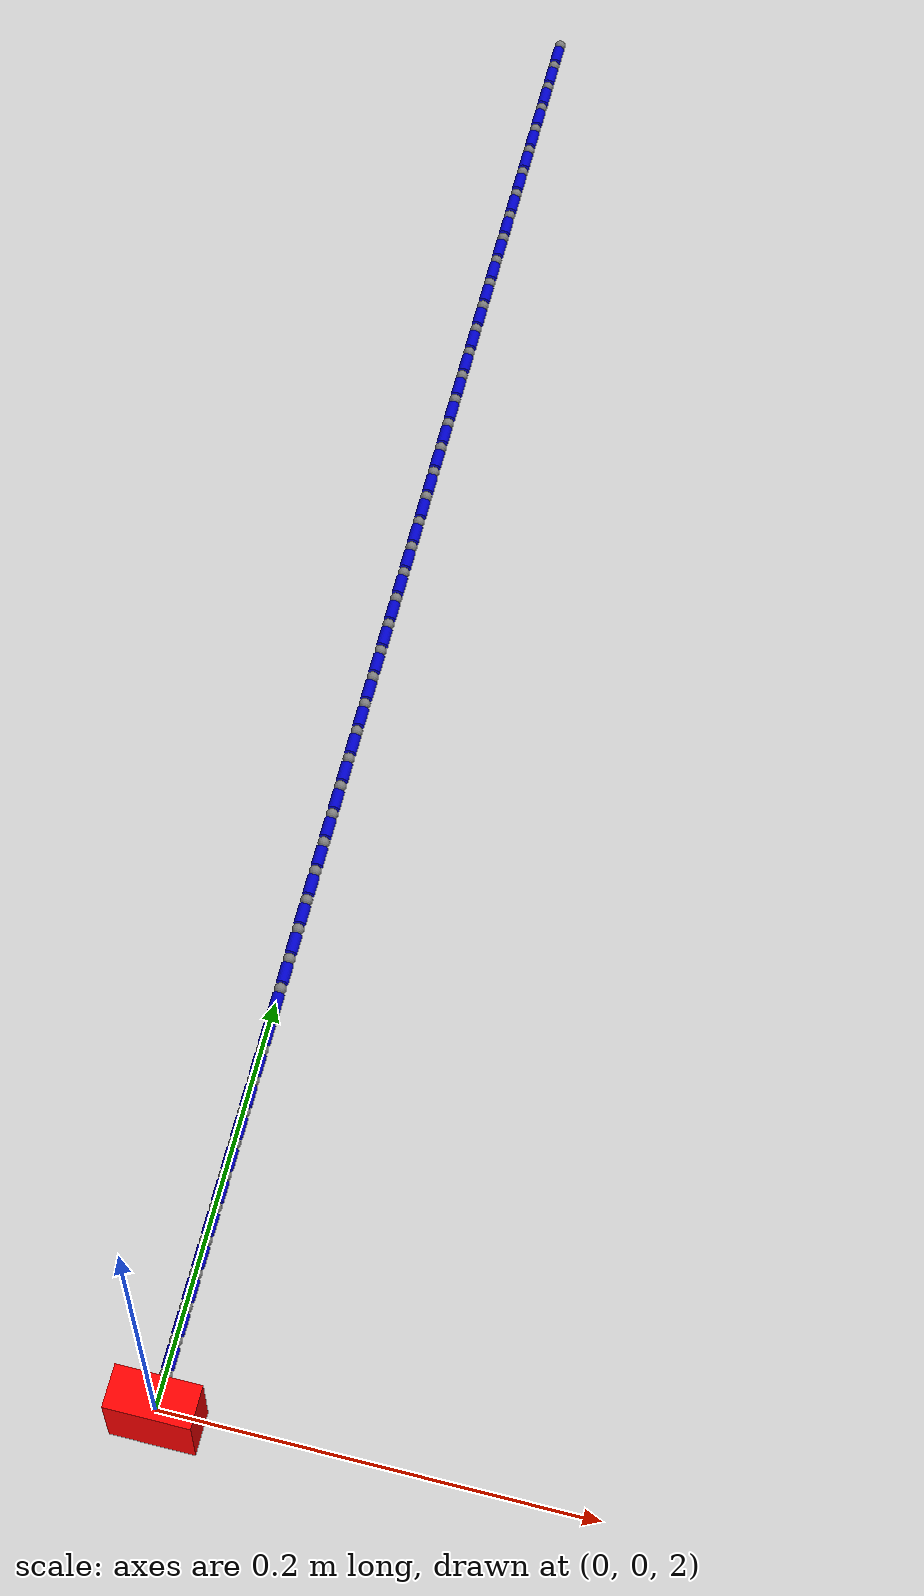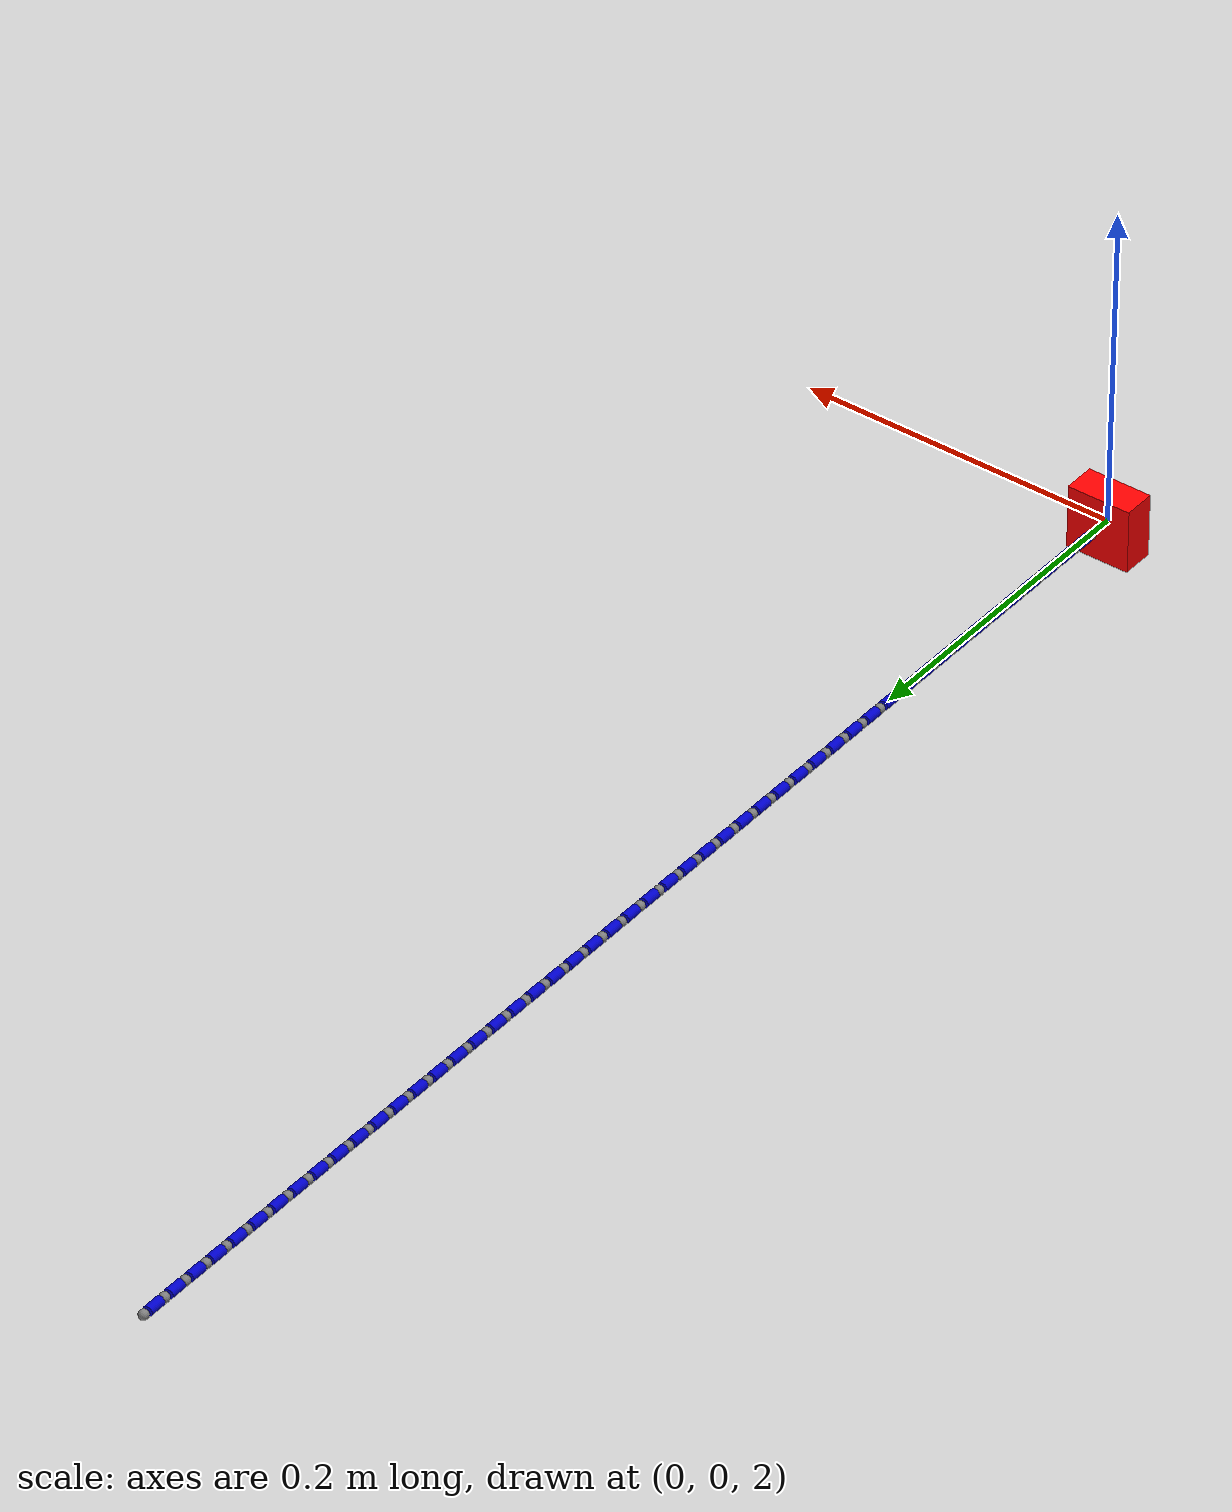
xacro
<?xml version="1.0"?>
<robot name="flexible_cable" xmlns:xacro="http://www.ros.org/wiki/xacro">
  <xacro:property name="blue_color" value="0 0 0.8 1" />
  <xacro:property name="red_color" value="1 0 0 1" />
  <xacro:property name="gray_color" value="0.5 0.5 0.5 1" />
  <xacro:property name="sphere_radius" value="0.003" />
  <xacro:property name="cylinder_radius" value="0.003" />
  <xacro:property name="cylinder_length" value="0.01" />
  <xacro:property name="cable_height" value="2" />
  <xacro:property name="damping" value="0.1" />
  <xacro:property name="friction" value="0.0" />

  <material name="blue">
    <color rgba="${blue_color}"/>
  </material>

  <material name="gray">
    <color rgba="${gray_color}"/>
  </material>

  <!-- World link (invisible) -->
  <link name="world"/>

  <link name="base_link">
    <visual>
      <geometry>
        <box size="${4 * cylinder_length} ${4 * cylinder_length} ${2 * cylinder_length}"/>
      </geometry>
      <material name="red">
        <color rgba="${red_color}"/>
      </material>
    </visual>
    <collision>
      <geometry>
        <box size="${4 * cylinder_length} ${4 * cylinder_length} ${2 * cylinder_length}"/>
      </geometry>
    </collision>
    <inertial>
      <mass value="0.1"/>
      <inertia ixx="0.01" ixy="0" ixz="0" iyy="0.01" iyz="0" izz="0.01"/>
    </inertial>
  </link>

  <gazebo reference="base_link">
    <material>Gazebo/Gray</material>
    <selfCollide>true</selfCollide>
  </gazebo>

  <!-- Fixed joint to connect base_link to world -->
  <joint name="fixed_to_world" type="fixed">
    <parent link="world"/>
    <child link="base_link"/>
    <origin xyz="0 0 ${cable_height}" rpy="1.57 0 0"/>
  </joint>

  <!-- Cable segment macro -->
  <xacro:macro name="cable_segment" params="name parent">
    <!-- Spherical joint -->
    <link name="${name}_sphere">
      <visual>
        <geometry>
          <sphere radius="${sphere_radius}"/>
        </geometry>
        <material name="gray"/>
      </visual>
      <collision>
        <geometry>
          <sphere radius="${sphere_radius}"/>
        </geometry>
      </collision>
      <inertial>
        <mass value="0.005"/>
        <inertia ixx="0.0001" ixy="0" ixz="0" iyy="0.0001" iyz="0" izz="0.0001"/>
      </inertial>
    </link>

  <joint name="${parent}_to_${name}_sphere" type="revolute">
    <parent link="${parent}"/>
    <child link="${name}_sphere"/>
    <origin xyz="0 0 ${-cylinder_length - 2 * sphere_radius}" rpy="0 0 0"/>
    <axis xyz="0 1 0"/>
    <limit lower="-3.14" upper="3.14" effort="10" velocity="3"/>
    <dynamics damping="${damping}" friction="${friction}"/>
  </joint>

    <!-- Cylinder segment -->
  <link name="${name}_cylinder">
    <visual>
      <geometry>
        <cylinder length="${cylinder_length}" radius="${cylinder_radius}"/>
      </geometry>
      <origin xyz="0 0 ${-cylinder_length/2- sphere_radius}" rpy="0 0 0"/>
      <material name="blue"/>
    </visual>
    <collision>
      <geometry>
        <cylinder length="${cylinder_length}" radius="${cylinder_radius}"/>
      </geometry>
      <origin xyz="0 0 ${-cylinder_length/2- sphere_radius}" rpy="0 0 0"/>
    </collision>
    <inertial>
      <mass value="0.01"/>
      <inertia ixx="0.001" ixy="0" ixz="0" iyy="0.001" iyz="0" izz="0.001"/>
      <origin xyz="0 0 ${-cylinder_length/2- sphere_radius}" rpy="0 0 0"/>
    </inertial>
  </link>

  <joint name="${name}_sphere_to_cylinder" type="revolute">
    <parent link="${name}_sphere"/>
    <child link="${name}_cylinder"/>
    <origin xyz="0 0 0" rpy="0 0 0"/>
    <axis xyz="1 0 0"/>
    <limit lower="-3.14" upper="3.14" effort="10" velocity="3"/>
    <dynamics damping="${damping}" friction="${friction}"/>
  </joint>

    <!-- Enable self-collision for this segment -->
  <gazebo reference="${name}_sphere">
    <material>Gazebo/Gray</material>
    <selfCollide>true</selfCollide>
  </gazebo>

  <gazebo reference="${name}_cylinder">
    <material>Gazebo/Blue</material>
    <selfCollide>true</selfCollide>
  </gazebo>
  </xacro:macro>

  <!-- Create 50 segments -->
  <xacro:cable_segment name="segment_1" parent="base_link"/>
  <xacro:cable_segment name="segment_2" parent="segment_1_cylinder"/>
  <xacro:cable_segment name="segment_3" parent="segment_2_cylinder"/>
  <xacro:cable_segment name="segment_4" parent="segment_3_cylinder"/>
  <xacro:cable_segment name="segment_5" parent="segment_4_cylinder"/>
  <xacro:cable_segment name="segment_6" parent="segment_5_cylinder"/>
  <xacro:cable_segment name="segment_7" parent="segment_6_cylinder"/>
  <xacro:cable_segment name="segment_8" parent="segment_7_cylinder"/>
  <xacro:cable_segment name="segment_9" parent="segment_8_cylinder"/>
  <xacro:cable_segment name="segment_10" parent="segment_9_cylinder"/>
  <xacro:cable_segment name="segment_11" parent="segment_10_cylinder"/>
  <xacro:cable_segment name="segment_12" parent="segment_11_cylinder"/>
  <xacro:cable_segment name="segment_13" parent="segment_12_cylinder"/>
  <xacro:cable_segment name="segment_14" parent="segment_13_cylinder"/>
  <xacro:cable_segment name="segment_15" parent="segment_14_cylinder"/>
  <xacro:cable_segment name="segment_16" parent="segment_15_cylinder"/>
  <xacro:cable_segment name="segment_17" parent="segment_16_cylinder"/>
  <xacro:cable_segment name="segment_18" parent="segment_17_cylinder"/>
  <xacro:cable_segment name="segment_19" parent="segment_18_cylinder"/>
  <xacro:cable_segment name="segment_20" parent="segment_19_cylinder"/>
  <xacro:cable_segment name="segment_21" parent="segment_20_cylinder"/>
  <xacro:cable_segment name="segment_22" parent="segment_21_cylinder"/>
  <xacro:cable_segment name="segment_23" parent="segment_22_cylinder"/>
  <xacro:cable_segment name="segment_24" parent="segment_23_cylinder"/>
  <xacro:cable_segment name="segment_25" parent="segment_24_cylinder"/>
  <xacro:cable_segment name="segment_26" parent="segment_25_cylinder"/>
  <xacro:cable_segment name="segment_27" parent="segment_26_cylinder"/>
  <xacro:cable_segment name="segment_28" parent="segment_27_cylinder"/>
  <xacro:cable_segment name="segment_29" parent="segment_28_cylinder"/>
  <xacro:cable_segment name="segment_30" parent="segment_29_cylinder"/>
  <xacro:cable_segment name="segment_31" parent="segment_30_cylinder"/>
  <xacro:cable_segment name="segment_32" parent="segment_31_cylinder"/>
  <xacro:cable_segment name="segment_33" parent="segment_32_cylinder"/>
  <xacro:cable_segment name="segment_34" parent="segment_33_cylinder"/>
  <xacro:cable_segment name="segment_35" parent="segment_34_cylinder"/>
  <xacro:cable_segment name="segment_36" parent="segment_35_cylinder"/>
  <xacro:cable_segment name="segment_37" parent="segment_36_cylinder"/>
  <xacro:cable_segment name="segment_38" parent="segment_37_cylinder"/>
  <xacro:cable_segment name="segment_39" parent="segment_38_cylinder"/>
  <xacro:cable_segment name="segment_40" parent="segment_39_cylinder"/>
  <xacro:cable_segment name="segment_41" parent="segment_40_cylinder"/>
  <xacro:cable_segment name="segment_42" parent="segment_41_cylinder"/>
  <xacro:cable_segment name="segment_43" parent="segment_42_cylinder"/>
  <xacro:cable_segment name="segment_44" parent="segment_43_cylinder"/>
  <xacro:cable_segment name="segment_45" parent="segment_44_cylinder"/>
  <xacro:cable_segment name="segment_46" parent="segment_45_cylinder"/>
  <xacro:cable_segment name="segment_47" parent="segment_46_cylinder"/>
  <xacro:cable_segment name="segment_48" parent="segment_47_cylinder"/>
  <xacro:cable_segment name="segment_49" parent="segment_48_cylinder"/>
  <xacro:cable_segment name="segment_50" parent="segment_49_cylinder"/>

  <!-- add one sphere at the end -->
  <link name="end_sphere">
    <visual>
      <geometry>
        <sphere radius="${sphere_radius}"/>
      </geometry>
      <material name="gray"/>
    </visual>
    <collision>
      <geometry>
        <sphere radius="${sphere_radius}"/>
      </geometry>
    </collision>
    <inertial>
      <mass value="0.005"/>
      <inertia ixx="0.0001" ixy="0" ixz="0" iyy="0.0001" iyz="0" izz="0.0001"/>
    </inertial>
  </link>

  <joint name="joint_end_sphere" type="revolute">
    <parent link="segment_50_cylinder"/>
    <child link="end_sphere"/>
    <origin xyz="0 0 ${-cylinder_length - 2 * sphere_radius}" rpy="0 0 0"/>
    <axis xyz="0 1 0"/>
    <limit lower="-1.57" upper="1.57" effort="10" velocity="3"/>
    <dynamics damping="${damping}" friction="${friction}"/>
  </joint>

  <gazebo>
    <plugin filename="libgazebo_ros2_control.so" name="gazebo_ros2_control">
      <parameters>$(find cable_control)/config/cable_controllers.yaml</parameters>
    </plugin>
  </gazebo>

  <ros2_control name="gazebo_ros2_control" type="system">
    <hardware>
      <plugin>gazebo_ros2_control/GazeboSystem</plugin>
    </hardware>
    <joint name="joint_end_sphere">
      <command_interface name="position"/>
      <state_interface name="position"/>
      <state_interface name="velocity"/>
    </joint>
  </ros2_control>

</robot>
